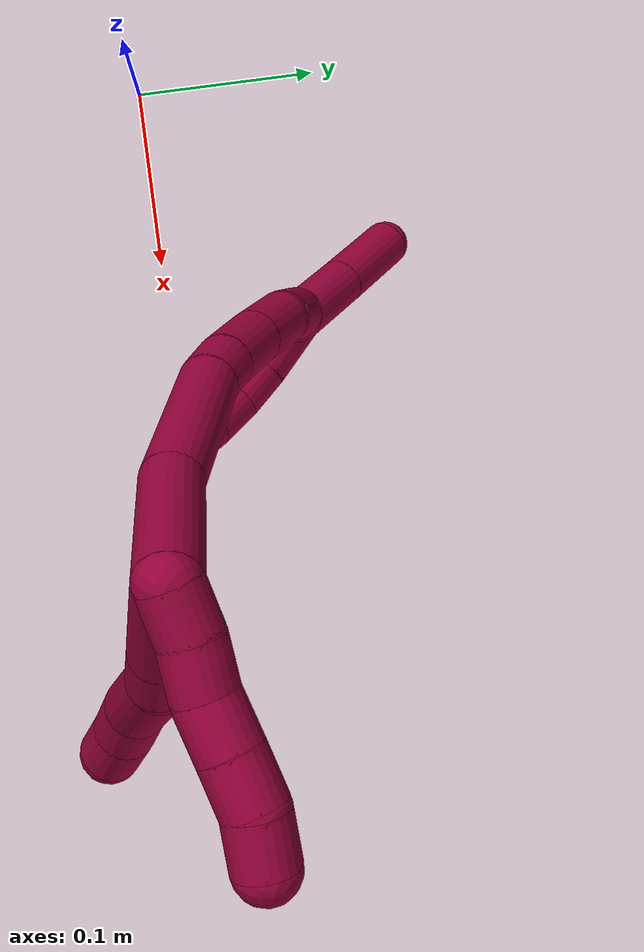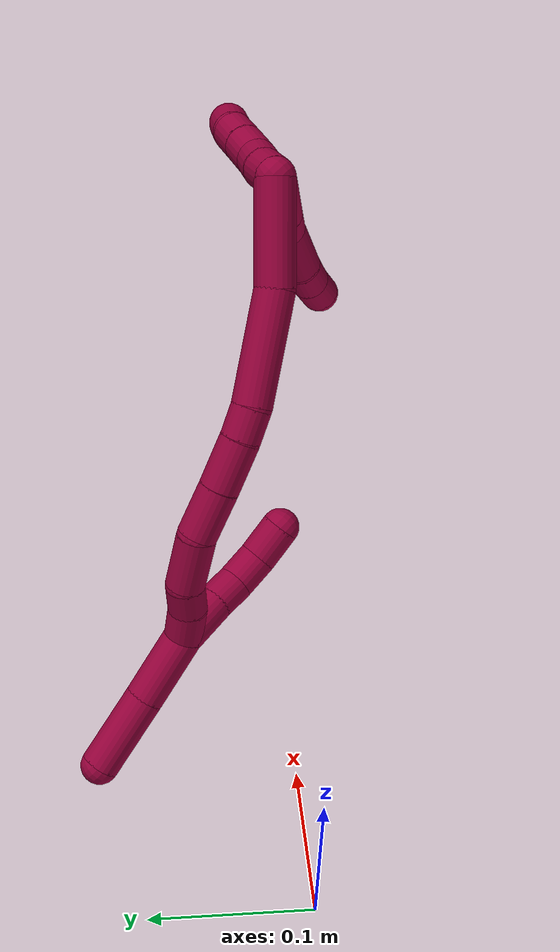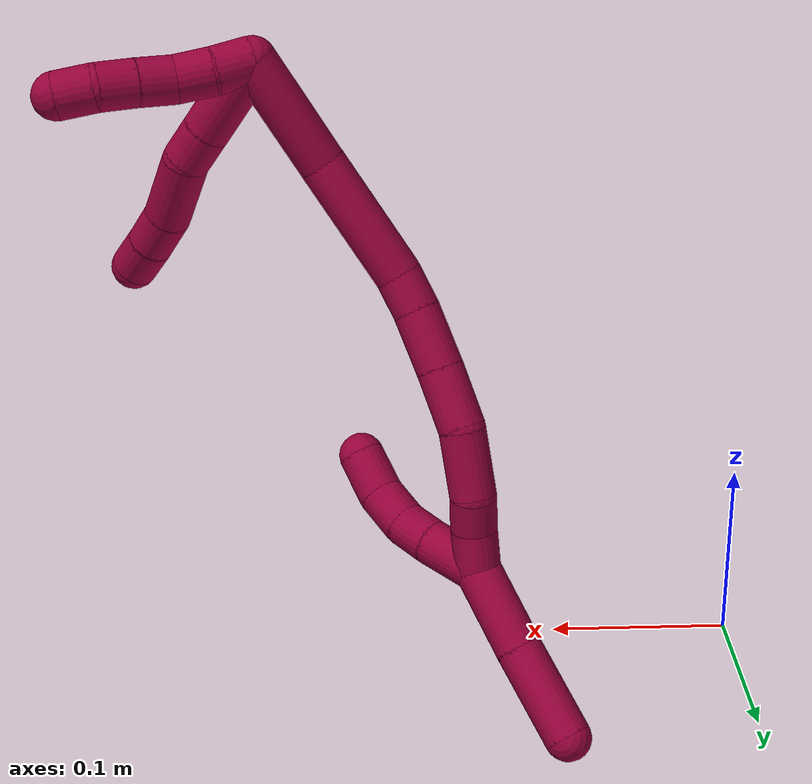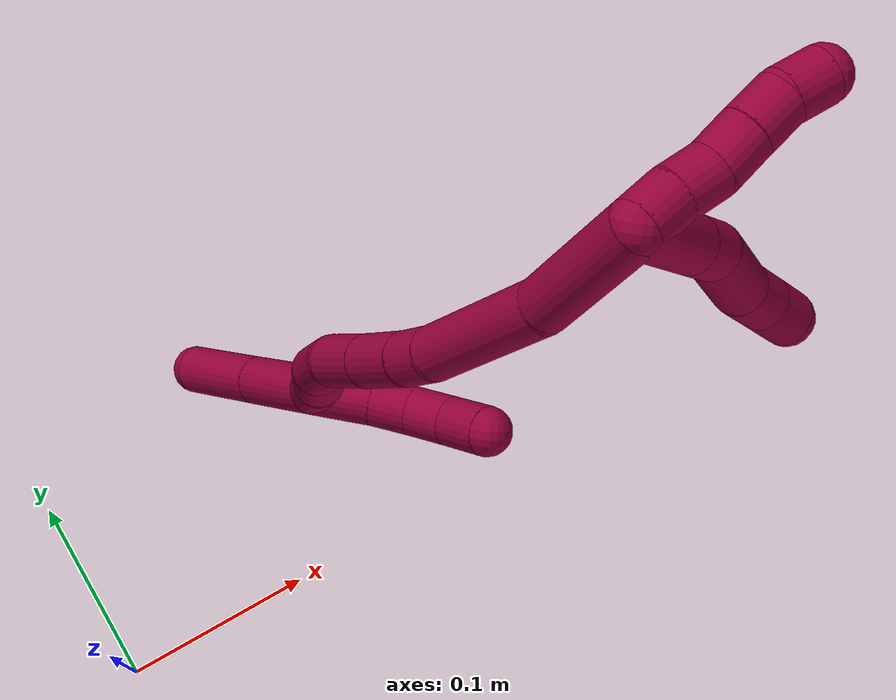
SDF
<sdf version="1.7">
 <world name="default">
  <model name="8">
   <static>0</static>
   <link name="8">
    <collision name="collision-cylinder-e_1_2_8">
     <pose>0.02195 0.005044 -0.006837 -2.50594 1.20147 -2.24638</pose>
     <geometry><cylinder><radius>0.0125</radius><length>0.047074</length></cylinder></geometry>
     <surface>
      <friction><ode><mu>1.16</mu><mu2>1.16</mu2><slip1>0</slip1><slip2>0</slip2></ode></friction>
      <contact><ode><kp>1e+06</kp><kd>1</kd><max_vel>0</max_vel><min_depth>0.001</min_depth></ode></contact>
     </surface>
    </collision>
    <visual name="visual-cylinder-e_1_2_8">
     <pose>0.02195 0.005044 -0.006837 -2.50594 1.20147 -2.24638</pose>
     <geometry><cylinder><radius>0.0125</radius><length>0.047074</length></cylinder></geometry>
     <material><ambient>0.584314 0 0.227451 1</ambient></material>
    </visual>
    <collision name="collision-cylinder-e_2_8_9">
     <pose>0.053598 0.012251 -0.016677 -2.51752 1.20628 -2.26559</pose>
     <geometry><cylinder><radius>0.0125</radius><length>0.02076</length></cylinder></geometry>
     <surface>
      <friction><ode><mu>1.16</mu><mu2>1.16</mu2><slip1>0</slip1><slip2>0</slip2></ode></friction>
      <contact><ode><kp>1e+06</kp><kd>1</kd><max_vel>0</max_vel><min_depth>0.001</min_depth></ode></contact>
     </surface>
    </collision>
    <visual name="visual-cylinder-e_2_8_9">
     <pose>0.053598 0.012251 -0.016677 -2.51752 1.20628 -2.26559</pose>
     <geometry><cylinder><radius>0.0125</radius><length>0.02076</length></cylinder></geometry>
     <material><ambient>0.584314 0 0.227451 1</ambient></material>
    </visual>
    <collision name="collision-cylinder-e_3_9_10">
     <pose>0.079101 0.018482 -0.030273 -2.77491 0.94812 -2.44802</pose>
     <geometry><cylinder><radius>0.0125</radius><length>0.038913</length></cylinder></geometry>
     <surface>
      <friction><ode><mu>1.16</mu><mu2>1.16</mu2><slip1>0</slip1><slip2>0</slip2></ode></friction>
      <contact><ode><kp>1e+06</kp><kd>1</kd><max_vel>0</max_vel><min_depth>0.001</min_depth></ode></contact>
     </surface>
    </collision>
    <visual name="visual-cylinder-e_3_9_10">
     <pose>0.079101 0.018482 -0.030273 -2.77491 0.94812 -2.44802</pose>
     <geometry><cylinder><radius>0.0125</radius><length>0.038913</length></cylinder></geometry>
     <material><ambient>0.584314 0 0.227451 1</ambient></material>
    </visual>
    <collision name="collision-cylinder-e_4_10_11">
     <pose>0.104733 0.0237 -0.045522 -2.89942 1.11672 -2.75682</pose>
     <geometry><cylinder><radius>0.0125</radius><length>0.02187</length></cylinder></geometry>
     <surface>
      <friction><ode><mu>1.16</mu><mu2>1.16</mu2><slip1>0</slip1><slip2>0</slip2></ode></friction>
      <contact><ode><kp>1e+06</kp><kd>1</kd><max_vel>0</max_vel><min_depth>0.001</min_depth></ode></contact>
     </surface>
    </collision>
    <visual name="visual-cylinder-e_4_10_11">
     <pose>0.104733 0.0237 -0.045522 -2.89942 1.11672 -2.75682</pose>
     <geometry><cylinder><radius>0.0125</radius><length>0.02187</length></cylinder></geometry>
     <material><ambient>0.584314 0 0.227451 1</ambient></material>
    </visual>
    <collision name="collision-cylinder-e_5_11_6">
     <pose>0.124126 0.025106 -0.054945 -3.08796 1.10796 -3.05492</pose>
     <geometry><cylinder><radius>0.0125</radius><length>0.021383</length></cylinder></geometry>
     <surface>
      <friction><ode><mu>1.16</mu><mu2>1.16</mu2><slip1>0</slip1><slip2>0</slip2></ode></friction>
      <contact><ode><kp>1e+06</kp><kd>1</kd><max_vel>0</max_vel><min_depth>0.001</min_depth></ode></contact>
     </surface>
    </collision>
    <visual name="visual-cylinder-e_5_11_6">
     <pose>0.124126 0.025106 -0.054945 -3.08796 1.10796 -3.05492</pose>
     <geometry><cylinder><radius>0.0125</radius><length>0.021383</length></cylinder></geometry>
     <material><ambient>0.584314 0 0.227451 1</ambient></material>
    </visual>
    <collision name="collision-cylinder-e_1_2_12">
     <pose>0.008491 5e-05 0.005282 -0.009557 1.01432 -0.005311</pose>
     <geometry><cylinder><radius>0.0125</radius><length>0.02</length></cylinder></geometry>
     <surface>
      <friction><ode><mu>1.16</mu><mu2>1.16</mu2><slip1>0</slip1><slip2>0</slip2></ode></friction>
      <contact><ode><kp>1e+06</kp><kd>1</kd><max_vel>0</max_vel><min_depth>0.001</min_depth></ode></contact>
     </surface>
    </collision>
    <visual name="visual-cylinder-e_1_2_12">
     <pose>0.008491 5e-05 0.005282 -0.009557 1.01432 -0.005311</pose>
     <geometry><cylinder><radius>0.0125</radius><length>0.02</length></cylinder></geometry>
     <material><ambient>0.584314 0 0.227451 1</ambient></material>
    </visual>
    <collision name="collision-cylinder-e_2_12_13">
     <pose>0.025764 -0.001032 0.01521 0.239215 1.07205 0.142543</pose>
     <geometry><cylinder><radius>0.0125</radius><length>0.02</length></cylinder></geometry>
     <surface>
      <friction><ode><mu>1.16</mu><mu2>1.16</mu2><slip1>0</slip1><slip2>0</slip2></ode></friction>
      <contact><ode><kp>1e+06</kp><kd>1</kd><max_vel>0</max_vel><min_depth>0.001</min_depth></ode></contact>
     </surface>
    </collision>
    <visual name="visual-cylinder-e_2_12_13">
     <pose>0.025764 -0.001032 0.01521 0.239215 1.07205 0.142543</pose>
     <geometry><cylinder><radius>0.0125</radius><length>0.02</length></cylinder></geometry>
     <material><ambient>0.584314 0 0.227451 1</ambient></material>
    </visual>
    <collision name="collision-cylinder-e_3_13_14">
     <pose>0.041803 -0.003015 0.026685 0.123727 0.812072 0.053249</pose>
     <geometry><cylinder><radius>0.0125</radius><length>0.02</length></cylinder></geometry>
     <surface>
      <friction><ode><mu>1.16</mu><mu2>1.16</mu2><slip1>0</slip1><slip2>0</slip2></ode></friction>
      <contact><ode><kp>1e+06</kp><kd>1</kd><max_vel>0</max_vel><min_depth>0.001</min_depth></ode></contact>
     </surface>
    </collision>
    <visual name="visual-cylinder-e_3_13_14">
     <pose>0.041803 -0.003015 0.026685 0.123727 0.812072 0.053249</pose>
     <geometry><cylinder><radius>0.0125</radius><length>0.02</length></cylinder></geometry>
     <material><ambient>0.584314 0 0.227451 1</ambient></material>
    </visual>
    <collision name="collision-cylinder-e_4_14_15">
     <pose>0.056604 -0.004605 0.040035 0.113156 0.854702 0.051577</pose>
     <geometry><cylinder><radius>0.0125</radius><length>0.02</length></cylinder></geometry>
     <surface>
      <friction><ode><mu>1.16</mu><mu2>1.16</mu2><slip1>0</slip1><slip2>0</slip2></ode></friction>
      <contact><ode><kp>1e+06</kp><kd>1</kd><max_vel>0</max_vel><min_depth>0.001</min_depth></ode></contact>
     </surface>
    </collision>
    <visual name="visual-cylinder-e_4_14_15">
     <pose>0.056604 -0.004605 0.040035 0.113156 0.854702 0.051577</pose>
     <geometry><cylinder><radius>0.0125</radius><length>0.02</length></cylinder></geometry>
     <material><ambient>0.584314 0 0.227451 1</ambient></material>
    </visual>
    <collision name="collision-cylinder-e_5_15_5">
     <pose>0.073071 -0.006874 0.050804 0.345238 1.1025 0.213579</pose>
     <geometry><cylinder><radius>0.0125</radius><length>0.02</length></cylinder></geometry>
     <surface>
      <friction><ode><mu>1.16</mu><mu2>1.16</mu2><slip1>0</slip1><slip2>0</slip2></ode></friction>
      <contact><ode><kp>1e+06</kp><kd>1</kd><max_vel>0</max_vel><min_depth>0.001</min_depth></ode></contact>
     </surface>
    </collision>
    <visual name="visual-cylinder-e_5_15_5">
     <pose>0.073071 -0.006874 0.050804 0.345238 1.1025 0.213579</pose>
     <geometry><cylinder><radius>0.0125</radius><length>0.02</length></cylinder></geometry>
     <material><ambient>0.584314 0 0.227451 1</ambient></material>
    </visual>
    <collision name="collision-cylinder-e_1_2_16">
     <pose>0.001559 0.022532 -0.022492 -2.35531 0.048916 -0.117832</pose>
     <geometry><cylinder><radius>0.0125</radius><length>0.06375</length></cylinder></geometry>
     <surface>
      <friction><ode><mu>1.16</mu><mu2>1.16</mu2><slip1>0</slip1><slip2>0</slip2></ode></friction>
      <contact><ode><kp>1e+06</kp><kd>1</kd><max_vel>0</max_vel><min_depth>0.001</min_depth></ode></contact>
     </surface>
    </collision>
    <visual name="visual-cylinder-e_1_2_16">
     <pose>0.001559 0.022532 -0.022492 -2.35531 0.048916 -0.117832</pose>
     <geometry><cylinder><radius>0.0125</radius><length>0.06375</length></cylinder></geometry>
     <material><ambient>0.584314 0 0.227451 1</ambient></material>
    </visual>
    <collision name="collision-cylinder-e_2_16_17">
     <pose>0.002332 0.074094 -0.064452 -2.16151 -0.022467 0.042112</pose>
     <geometry><cylinder><radius>0.0125</radius><length>0.069926</length></cylinder></geometry>
     <surface>
      <friction><ode><mu>1.16</mu><mu2>1.16</mu2><slip1>0</slip1><slip2>0</slip2></ode></friction>
      <contact><ode><kp>1e+06</kp><kd>1</kd><max_vel>0</max_vel><min_depth>0.001</min_depth></ode></contact>
     </surface>
    </collision>
    <visual name="visual-cylinder-e_2_16_17">
     <pose>0.002332 0.074094 -0.064452 -2.16151 -0.022467 0.042112</pose>
     <geometry><cylinder><radius>0.0125</radius><length>0.069926</length></cylinder></geometry>
     <material><ambient>0.584314 0 0.227451 1</ambient></material>
    </visual>
    <collision name="collision-cylinder-e_3_17_18">
     <pose>0.002246 0.112334 -0.088277 -2.01271 0.068544 -0.108195</pose>
     <geometry><cylinder><radius>0.0125</radius><length>0.020423</length></cylinder></geometry>
     <surface>
      <friction><ode><mu>1.16</mu><mu2>1.16</mu2><slip1>0</slip1><slip2>0</slip2></ode></friction>
      <contact><ode><kp>1e+06</kp><kd>1</kd><max_vel>0</max_vel><min_depth>0.001</min_depth></ode></contact>
     </surface>
    </collision>
    <visual name="visual-cylinder-e_3_17_18">
     <pose>0.002246 0.112334 -0.088277 -2.01271 0.068544 -0.108195</pose>
     <geometry><cylinder><radius>0.0125</radius><length>0.020423</length></cylinder></geometry>
     <material><ambient>0.584314 0 0.227451 1</ambient></material>
    </visual>
    <collision name="collision-cylinder-e_4_18_19">
     <pose>0.005084 0.136606 -0.098471 -1.94051 0.131664 -0.191916</pose>
     <geometry><cylinder><radius>0.0125</radius><length>0.032592</length></cylinder></geometry>
     <surface>
      <friction><ode><mu>1.16</mu><mu2>1.16</mu2><slip1>0</slip1><slip2>0</slip2></ode></friction>
      <contact><ode><kp>1e+06</kp><kd>1</kd><max_vel>0</max_vel><min_depth>0.001</min_depth></ode></contact>
     </surface>
    </collision>
    <visual name="visual-cylinder-e_4_18_19">
     <pose>0.005084 0.136606 -0.098471 -1.94051 0.131664 -0.191916</pose>
     <geometry><cylinder><radius>0.0125</radius><length>0.032592</length></cylinder></geometry>
     <material><ambient>0.584314 0 0.227451 1</ambient></material>
    </visual>
    <collision name="collision-cylinder-e_5_19_20">
     <pose>0.009807 0.167067 -0.109776 -1.91196 0.156821 -0.221636</pose>
     <geometry><cylinder><radius>0.0125</radius><length>0.033084</length></cylinder></geometry>
     <surface>
      <friction><ode><mu>1.16</mu><mu2>1.16</mu2><slip1>0</slip1><slip2>0</slip2></ode></friction>
      <contact><ode><kp>1e+06</kp><kd>1</kd><max_vel>0</max_vel><min_depth>0.001</min_depth></ode></contact>
     </surface>
    </collision>
    <visual name="visual-cylinder-e_5_19_20">
     <pose>0.009807 0.167067 -0.109776 -1.91196 0.156821 -0.221636</pose>
     <geometry><cylinder><radius>0.0125</radius><length>0.033084</length></cylinder></geometry>
     <material><ambient>0.584314 0 0.227451 1</ambient></material>
    </visual>
    <collision name="collision-cylinder-e_6_20_21">
     <pose>0.019669 0.197134 -0.1236 -2.08862 0.406986 -0.682306</pose>
     <geometry><cylinder><radius>0.0125</radius><length>0.036771</length></cylinder></geometry>
     <surface>
      <friction><ode><mu>1.16</mu><mu2>1.16</mu2><slip1>0</slip1><slip2>0</slip2></ode></friction>
      <contact><ode><kp>1e+06</kp><kd>1</kd><max_vel>0</max_vel><min_depth>0.001</min_depth></ode></contact>
     </surface>
    </collision>
    <visual name="visual-cylinder-e_6_20_21">
     <pose>0.019669 0.197134 -0.1236 -2.08862 0.406986 -0.682306</pose>
     <geometry><cylinder><radius>0.0125</radius><length>0.036771</length></cylinder></geometry>
     <material><ambient>0.584314 0 0.227451 1</ambient></material>
    </visual>
    <collision name="collision-cylinder-e_7_21_22">
     <pose>0.032462 0.217582 -0.138008 -2.37934 0.58283 -1.28513</pose>
     <geometry><cylinder><radius>0.0125</radius><length>0.020042</length></cylinder></geometry>
     <surface>
      <friction><ode><mu>1.16</mu><mu2>1.16</mu2><slip1>0</slip1><slip2>0</slip2></ode></friction>
      <contact><ode><kp>1e+06</kp><kd>1</kd><max_vel>0</max_vel><min_depth>0.001</min_depth></ode></contact>
     </surface>
    </collision>
    <visual name="visual-cylinder-e_7_21_22">
     <pose>0.032462 0.217582 -0.138008 -2.37934 0.58283 -1.28513</pose>
     <geometry><cylinder><radius>0.0125</radius><length>0.020042</length></cylinder></geometry>
     <material><ambient>0.584314 0 0.227451 1</ambient></material>
    </visual>
    <collision name="collision-cylinder-e_8_22_1">
     <pose>0.043475 0.231986 -0.149752 -2.15409 0.488872 -0.867927</pose>
     <geometry><cylinder><radius>0.0125</radius><length>0.023413</length></cylinder></geometry>
     <surface>
      <friction><ode><mu>1.16</mu><mu2>1.16</mu2><slip1>0</slip1><slip2>0</slip2></ode></friction>
      <contact><ode><kp>1e+06</kp><kd>1</kd><max_vel>0</max_vel><min_depth>0.001</min_depth></ode></contact>
     </surface>
    </collision>
    <visual name="visual-cylinder-e_8_22_1">
     <pose>0.043475 0.231986 -0.149752 -2.15409 0.488872 -0.867927</pose>
     <geometry><cylinder><radius>0.0125</radius><length>0.023413</length></cylinder></geometry>
     <material><ambient>0.584314 0 0.227451 1</ambient></material>
    </visual>
    <collision name="collision-cylinder-e_1_1_23">
     <pose>0.058418 0.227702 -0.155321 1.56126 0.631626 0.626017</pose>
     <geometry><cylinder><radius>0.0125</radius><length>0.031995</length></cylinder></geometry>
     <surface>
      <friction><ode><mu>1.16</mu><mu2>1.16</mu2><slip1>0</slip1><slip2>0</slip2></ode></friction>
      <contact><ode><kp>1e+06</kp><kd>1</kd><max_vel>0</max_vel><min_depth>0.001</min_depth></ode></contact>
     </surface>
    </collision>
    <visual name="visual-cylinder-e_1_1_23">
     <pose>0.058418 0.227702 -0.155321 1.56126 0.631626 0.626017</pose>
     <geometry><cylinder><radius>0.0125</radius><length>0.031995</length></cylinder></geometry>
     <material><ambient>0.584314 0 0.227451 1</ambient></material>
    </visual>
    <collision name="collision-cylinder-e_2_23_24">
     <pose>0.073395 0.206113 -0.155585 1.61533 0.566962 0.591341</pose>
     <geometry><cylinder><radius>0.0125</radius><length>0.020596</length></cylinder></geometry>
     <surface>
      <friction><ode><mu>1.16</mu><mu2>1.16</mu2><slip1>0</slip1><slip2>0</slip2></ode></friction>
      <contact><ode><kp>1e+06</kp><kd>1</kd><max_vel>0</max_vel><min_depth>0.001</min_depth></ode></contact>
     </surface>
    </collision>
    <visual name="visual-cylinder-e_2_23_24">
     <pose>0.073395 0.206113 -0.155585 1.61533 0.566962 0.591341</pose>
     <geometry><cylinder><radius>0.0125</radius><length>0.020596</length></cylinder></geometry>
     <material><ambient>0.584314 0 0.227451 1</ambient></material>
    </visual>
    <collision name="collision-cylinder-e_3_24_25">
     <pose>0.08225 0.186868 -0.155419 1.51857 0.304336 0.289063</pose>
     <geometry><cylinder><radius>0.0125</radius><length>0.022183</length></cylinder></geometry>
     <surface>
      <friction><ode><mu>1.16</mu><mu2>1.16</mu2><slip1>0</slip1><slip2>0</slip2></ode></friction>
      <contact><ode><kp>1e+06</kp><kd>1</kd><max_vel>0</max_vel><min_depth>0.001</min_depth></ode></contact>
     </surface>
    </collision>
    <visual name="visual-cylinder-e_3_24_25">
     <pose>0.08225 0.186868 -0.155419 1.51857 0.304336 0.289063</pose>
     <geometry><cylinder><radius>0.0125</radius><length>0.022183</length></cylinder></geometry>
     <material><ambient>0.584314 0 0.227451 1</ambient></material>
    </visual>
    <collision name="collision-cylinder-e_4_25_4">
     <pose>0.086151 0.16383 -0.153063 1.42715 0.045784 0.03964</pose>
     <geometry><cylinder><radius>0.0125</radius><length>0.025226</length></cylinder></geometry>
     <surface>
      <friction><ode><mu>1.16</mu><mu2>1.16</mu2><slip1>0</slip1><slip2>0</slip2></ode></friction>
      <contact><ode><kp>1e+06</kp><kd>1</kd><max_vel>0</max_vel><min_depth>0.001</min_depth></ode></contact>
     </surface>
    </collision>
    <visual name="visual-cylinder-e_4_25_4">
     <pose>0.086151 0.16383 -0.153063 1.42715 0.045784 0.03964</pose>
     <geometry><cylinder><radius>0.0125</radius><length>0.025226</length></cylinder></geometry>
     <material><ambient>0.584314 0 0.227451 1</ambient></material>
    </visual>
    <collision name="collision-cylinder-e_1_1_26">
     <pose>0.048423 0.263616 -0.160632 -1.79259 -0.023291 0.029127</pose>
     <geometry><cylinder><radius>0.0125</radius><length>0.047176</length></cylinder></geometry>
     <surface>
      <friction><ode><mu>1.16</mu><mu2>1.16</mu2><slip1>0</slip1><slip2>0</slip2></ode></friction>
      <contact><ode><kp>1e+06</kp><kd>1</kd><max_vel>0</max_vel><min_depth>0.001</min_depth></ode></contact>
     </surface>
    </collision>
    <visual name="visual-cylinder-e_1_1_26">
     <pose>0.048423 0.263616 -0.160632 -1.79259 -0.023291 0.029127</pose>
     <geometry><cylinder><radius>0.0125</radius><length>0.047176</length></cylinder></geometry>
     <material><ambient>0.584314 0 0.227451 1</ambient></material>
    </visual>
    <collision name="collision-cylinder-e_2_26_3">
     <pose>0.046403 0.312427 -0.171248 -1.77812 -0.055719 0.068649</pose>
     <geometry><cylinder><radius>0.0125</radius><length>0.052824</length></cylinder></geometry>
     <surface>
      <friction><ode><mu>1.16</mu><mu2>1.16</mu2><slip1>0</slip1><slip2>0</slip2></ode></friction>
      <contact><ode><kp>1e+06</kp><kd>1</kd><max_vel>0</max_vel><min_depth>0.001</min_depth></ode></contact>
     </surface>
    </collision>
    <visual name="visual-cylinder-e_2_26_3">
     <pose>0.046403 0.312427 -0.171248 -1.77812 -0.055719 0.068649</pose>
     <geometry><cylinder><radius>0.0125</radius><length>0.052824</length></cylinder></geometry>
     <material><ambient>0.584314 0 0.227451 1</ambient></material>
    </visual>
    <collision name="collision-sphere-3">
     <pose>0.044932 0.338233 -0.176676 0 -0 0</pose>
     <geometry><sphere><radius>0.0125</radius></sphere></geometry>
     <surface>
      <friction><ode><mu>1.16</mu><mu2>1.16</mu2><slip1>0</slip1><slip2>0</slip2></ode></friction>
      <contact><ode><kp>1e+06</kp><kd>1</kd><max_vel>0</max_vel><min_depth>0.001</min_depth></ode></contact>
     </surface>
    </collision>
    <visual name="visual-sphere-3">
     <pose>0.044932 0.338233 -0.176676 0 -0 0</pose>
     <geometry><sphere><radius>0.0125</radius></sphere></geometry>
     <material><ambient>0.584314 0 0.227451 1</ambient></material>
    </visual>
    <collision name="collision-sphere-26">
     <pose>0.047874 0.28662 -0.16582 0 -0 0</pose>
     <geometry><sphere><radius>0.0125</radius></sphere></geometry>
     <surface>
      <friction><ode><mu>1.16</mu><mu2>1.16</mu2><slip1>0</slip1><slip2>0</slip2></ode></friction>
      <contact><ode><kp>1e+06</kp><kd>1</kd><max_vel>0</max_vel><min_depth>0.001</min_depth></ode></contact>
     </surface>
    </collision>
    <visual name="visual-sphere-26">
     <pose>0.047874 0.28662 -0.16582 0 -0 0</pose>
     <geometry><sphere><radius>0.0125</radius></sphere></geometry>
     <material><ambient>0.584314 0 0.227451 1</ambient></material>
    </visual>
    <collision name="collision-sphere-4">
     <pose>0.086728 0.15136 -0.15126 0 -0 0</pose>
     <geometry><sphere><radius>0.0125</radius></sphere></geometry>
     <surface>
      <friction><ode><mu>1.16</mu><mu2>1.16</mu2><slip1>0</slip1><slip2>0</slip2></ode></friction>
      <contact><ode><kp>1e+06</kp><kd>1</kd><max_vel>0</max_vel><min_depth>0.001</min_depth></ode></contact>
     </surface>
    </collision>
    <visual name="visual-sphere-4">
     <pose>0.086728 0.15136 -0.15126 0 -0 0</pose>
     <geometry><sphere><radius>0.0125</radius></sphere></geometry>
     <material><ambient>0.584314 0 0.227451 1</ambient></material>
    </visual>
    <collision name="collision-sphere-25">
     <pose>0.085573 0.1763 -0.154867 0 -0 0</pose>
     <geometry><sphere><radius>0.0125</radius></sphere></geometry>
     <surface>
      <friction><ode><mu>1.16</mu><mu2>1.16</mu2><slip1>0</slip1><slip2>0</slip2></ode></friction>
      <contact><ode><kp>1e+06</kp><kd>1</kd><max_vel>0</max_vel><min_depth>0.001</min_depth></ode></contact>
     </surface>
    </collision>
    <visual name="visual-sphere-25">
     <pose>0.085573 0.1763 -0.154867 0 -0 0</pose>
     <geometry><sphere><radius>0.0125</radius></sphere></geometry>
     <material><ambient>0.584314 0 0.227451 1</ambient></material>
    </visual>
    <collision name="collision-sphere-24">
     <pose>0.078926 0.197435 -0.155972 0 -0 0</pose>
     <geometry><sphere><radius>0.0125</radius></sphere></geometry>
     <surface>
      <friction><ode><mu>1.16</mu><mu2>1.16</mu2><slip1>0</slip1><slip2>0</slip2></ode></friction>
      <contact><ode><kp>1e+06</kp><kd>1</kd><max_vel>0</max_vel><min_depth>0.001</min_depth></ode></contact>
     </surface>
    </collision>
    <visual name="visual-sphere-24">
     <pose>0.078926 0.197435 -0.155972 0 -0 0</pose>
     <geometry><sphere><radius>0.0125</radius></sphere></geometry>
     <material><ambient>0.584314 0 0.227451 1</ambient></material>
    </visual>
    <collision name="collision-sphere-23">
     <pose>0.067864 0.214792 -0.155198 0 -0 0</pose>
     <geometry><sphere><radius>0.0125</radius></sphere></geometry>
     <surface>
      <friction><ode><mu>1.16</mu><mu2>1.16</mu2><slip1>0</slip1><slip2>0</slip2></ode></friction>
      <contact><ode><kp>1e+06</kp><kd>1</kd><max_vel>0</max_vel><min_depth>0.001</min_depth></ode></contact>
     </surface>
    </collision>
    <visual name="visual-sphere-23">
     <pose>0.067864 0.214792 -0.155198 0 -0 0</pose>
     <geometry><sphere><radius>0.0125</radius></sphere></geometry>
     <material><ambient>0.584314 0 0.227451 1</ambient></material>
    </visual>
    <collision name="collision-sphere-1">
     <pose>0.048973 0.240612 -0.155445 0 -0 0</pose>
     <geometry><sphere><radius>0.0125</radius></sphere></geometry>
     <surface>
      <friction><ode><mu>1.16</mu><mu2>1.16</mu2><slip1>0</slip1><slip2>0</slip2></ode></friction>
      <contact><ode><kp>1e+06</kp><kd>1</kd><max_vel>0</max_vel><min_depth>0.001</min_depth></ode></contact>
     </surface>
    </collision>
    <visual name="visual-sphere-1">
     <pose>0.048973 0.240612 -0.155445 0 -0 0</pose>
     <geometry><sphere><radius>0.0125</radius></sphere></geometry>
     <material><ambient>0.584314 0 0.227451 1</ambient></material>
    </visual>
    <collision name="collision-sphere-22">
     <pose>0.037977 0.22336 -0.14406 0 -0 0</pose>
     <geometry><sphere><radius>0.0125</radius></sphere></geometry>
     <surface>
      <friction><ode><mu>1.16</mu><mu2>1.16</mu2><slip1>0</slip1><slip2>0</slip2></ode></friction>
      <contact><ode><kp>1e+06</kp><kd>1</kd><max_vel>0</max_vel><min_depth>0.001</min_depth></ode></contact>
     </surface>
    </collision>
    <visual name="visual-sphere-22">
     <pose>0.037977 0.22336 -0.14406 0 -0 0</pose>
     <geometry><sphere><radius>0.0125</radius></sphere></geometry>
     <material><ambient>0.584314 0 0.227451 1</ambient></material>
    </visual>
    <collision name="collision-sphere-21">
     <pose>0.026946 0.211804 -0.131957 0 -0 0</pose>
     <geometry><sphere><radius>0.0125</radius></sphere></geometry>
     <surface>
      <friction><ode><mu>1.16</mu><mu2>1.16</mu2><slip1>0</slip1><slip2>0</slip2></ode></friction>
      <contact><ode><kp>1e+06</kp><kd>1</kd><max_vel>0</max_vel><min_depth>0.001</min_depth></ode></contact>
     </surface>
    </collision>
    <visual name="visual-sphere-21">
     <pose>0.026946 0.211804 -0.131957 0 -0 0</pose>
     <geometry><sphere><radius>0.0125</radius></sphere></geometry>
     <material><ambient>0.584314 0 0.227451 1</ambient></material>
    </visual>
    <collision name="collision-sphere-6">
     <pose>0.133693 0.025362 -0.059712 0 -0 0</pose>
     <geometry><sphere><radius>0.0125</radius></sphere></geometry>
     <surface>
      <friction><ode><mu>1.16</mu><mu2>1.16</mu2><slip1>0</slip1><slip2>0</slip2></ode></friction>
      <contact><ode><kp>1e+06</kp><kd>1</kd><max_vel>0</max_vel><min_depth>0.001</min_depth></ode></contact>
     </surface>
    </collision>
    <visual name="visual-sphere-6">
     <pose>0.133693 0.025362 -0.059712 0 -0 0</pose>
     <geometry><sphere><radius>0.0125</radius></sphere></geometry>
     <material><ambient>0.584314 0 0.227451 1</ambient></material>
    </visual>
    <collision name="collision-sphere-11">
     <pose>0.11456 0.02485 -0.050179 0 -0 0</pose>
     <geometry><sphere><radius>0.0125</radius></sphere></geometry>
     <surface>
      <friction><ode><mu>1.16</mu><mu2>1.16</mu2><slip1>0</slip1><slip2>0</slip2></ode></friction>
      <contact><ode><kp>1e+06</kp><kd>1</kd><max_vel>0</max_vel><min_depth>0.001</min_depth></ode></contact>
     </surface>
    </collision>
    <visual name="visual-sphere-11">
     <pose>0.11456 0.02485 -0.050179 0 -0 0</pose>
     <geometry><sphere><radius>0.0125</radius></sphere></geometry>
     <material><ambient>0.584314 0 0.227451 1</ambient></material>
    </visual>
    <collision name="collision-sphere-10">
     <pose>0.094906 0.02255 -0.040866 0 -0 0</pose>
     <geometry><sphere><radius>0.0125</radius></sphere></geometry>
     <surface>
      <friction><ode><mu>1.16</mu><mu2>1.16</mu2><slip1>0</slip1><slip2>0</slip2></ode></friction>
      <contact><ode><kp>1e+06</kp><kd>1</kd><max_vel>0</max_vel><min_depth>0.001</min_depth></ode></contact>
     </surface>
    </collision>
    <visual name="visual-sphere-10">
     <pose>0.094906 0.02255 -0.040866 0 -0 0</pose>
     <geometry><sphere><radius>0.0125</radius></sphere></geometry>
     <material><ambient>0.584314 0 0.227451 1</ambient></material>
    </visual>
    <collision name="collision-sphere-9">
     <pose>0.063296 0.014414 -0.01968 0 -0 0</pose>
     <geometry><sphere><radius>0.0125</radius></sphere></geometry>
     <surface>
      <friction><ode><mu>1.16</mu><mu2>1.16</mu2><slip1>0</slip1><slip2>0</slip2></ode></friction>
      <contact><ode><kp>1e+06</kp><kd>1</kd><max_vel>0</max_vel><min_depth>0.001</min_depth></ode></contact>
     </surface>
    </collision>
    <visual name="visual-sphere-9">
     <pose>0.063296 0.014414 -0.01968 0 -0 0</pose>
     <geometry><sphere><radius>0.0125</radius></sphere></geometry>
     <material><ambient>0.584314 0 0.227451 1</ambient></material>
    </visual>
    <collision name="collision-sphere-2">
     <geometry><sphere><radius>0.0125</radius></sphere></geometry>
     <surface>
      <friction><ode><mu>1.16</mu><mu2>1.16</mu2><slip1>0</slip1><slip2>0</slip2></ode></friction>
      <contact><ode><kp>1e+06</kp><kd>1</kd><max_vel>0</max_vel><min_depth>0.001</min_depth></ode></contact>
     </surface>
    </collision>
    <visual name="visual-sphere-2">
     <geometry><sphere><radius>0.0125</radius></sphere></geometry>
     <material><ambient>0.584314 0 0.227451 1</ambient></material>
    </visual>
    <collision name="collision-sphere-19">
     <pose>0.007224 0.15167 -0.104309 0 -0 0</pose>
     <geometry><sphere><radius>0.0125</radius></sphere></geometry>
     <surface>
      <friction><ode><mu>1.16</mu><mu2>1.16</mu2><slip1>0</slip1><slip2>0</slip2></ode></friction>
      <contact><ode><kp>1e+06</kp><kd>1</kd><max_vel>0</max_vel><min_depth>0.001</min_depth></ode></contact>
     </surface>
    </collision>
    <visual name="visual-sphere-19">
     <pose>0.007224 0.15167 -0.104309 0 -0 0</pose>
     <geometry><sphere><radius>0.0125</radius></sphere></geometry>
     <material><ambient>0.584314 0 0.227451 1</ambient></material>
    </visual>
    <collision name="collision-sphere-8">
     <pose>0.0439 0.010089 -0.013674 0 -0 0</pose>
     <geometry><sphere><radius>0.0125</radius></sphere></geometry>
     <surface>
      <friction><ode><mu>1.16</mu><mu2>1.16</mu2><slip1>0</slip1><slip2>0</slip2></ode></friction>
      <contact><ode><kp>1e+06</kp><kd>1</kd><max_vel>0</max_vel><min_depth>0.001</min_depth></ode></contact>
     </surface>
    </collision>
    <visual name="visual-sphere-8">
     <pose>0.0439 0.010089 -0.013674 0 -0 0</pose>
     <geometry><sphere><radius>0.0125</radius></sphere></geometry>
     <material><ambient>0.584314 0 0.227451 1</ambient></material>
    </visual>
    <collision name="collision-sphere-12">
     <pose>0.016982 0.000101 0.010563 0 -0 0</pose>
     <geometry><sphere><radius>0.0125</radius></sphere></geometry>
     <surface>
      <friction><ode><mu>1.16</mu><mu2>1.16</mu2><slip1>0</slip1><slip2>0</slip2></ode></friction>
      <contact><ode><kp>1e+06</kp><kd>1</kd><max_vel>0</max_vel><min_depth>0.001</min_depth></ode></contact>
     </surface>
    </collision>
    <visual name="visual-sphere-12">
     <pose>0.016982 0.000101 0.010563 0 -0 0</pose>
     <geometry><sphere><radius>0.0125</radius></sphere></geometry>
     <material><ambient>0.584314 0 0.227451 1</ambient></material>
    </visual>
    <collision name="collision-sphere-13">
     <pose>0.034546 -0.002166 0.019857 0 -0 0</pose>
     <geometry><sphere><radius>0.0125</radius></sphere></geometry>
     <surface>
      <friction><ode><mu>1.16</mu><mu2>1.16</mu2><slip1>0</slip1><slip2>0</slip2></ode></friction>
      <contact><ode><kp>1e+06</kp><kd>1</kd><max_vel>0</max_vel><min_depth>0.001</min_depth></ode></contact>
     </surface>
    </collision>
    <visual name="visual-sphere-13">
     <pose>0.034546 -0.002166 0.019857 0 -0 0</pose>
     <geometry><sphere><radius>0.0125</radius></sphere></geometry>
     <material><ambient>0.584314 0 0.227451 1</ambient></material>
    </visual>
    <collision name="collision-sphere-14">
     <pose>0.04906 -0.003864 0.033512 0 -0 0</pose>
     <geometry><sphere><radius>0.0125</radius></sphere></geometry>
     <surface>
      <friction><ode><mu>1.16</mu><mu2>1.16</mu2><slip1>0</slip1><slip2>0</slip2></ode></friction>
      <contact><ode><kp>1e+06</kp><kd>1</kd><max_vel>0</max_vel><min_depth>0.001</min_depth></ode></contact>
     </surface>
    </collision>
    <visual name="visual-sphere-14">
     <pose>0.04906 -0.003864 0.033512 0 -0 0</pose>
     <geometry><sphere><radius>0.0125</radius></sphere></geometry>
     <material><ambient>0.584314 0 0.227451 1</ambient></material>
    </visual>
    <collision name="collision-sphere-15">
     <pose>0.064148 -0.005346 0.046557 0 -0 0</pose>
     <geometry><sphere><radius>0.0125</radius></sphere></geometry>
     <surface>
      <friction><ode><mu>1.16</mu><mu2>1.16</mu2><slip1>0</slip1><slip2>0</slip2></ode></friction>
      <contact><ode><kp>1e+06</kp><kd>1</kd><max_vel>0</max_vel><min_depth>0.001</min_depth></ode></contact>
     </surface>
    </collision>
    <visual name="visual-sphere-15">
     <pose>0.064148 -0.005346 0.046557 0 -0 0</pose>
     <geometry><sphere><radius>0.0125</radius></sphere></geometry>
     <material><ambient>0.584314 0 0.227451 1</ambient></material>
    </visual>
    <collision name="collision-sphere-5">
     <pose>0.081995 -0.008401 0.055052 0 -0 0</pose>
     <geometry><sphere><radius>0.0125</radius></sphere></geometry>
     <surface>
      <friction><ode><mu>1.16</mu><mu2>1.16</mu2><slip1>0</slip1><slip2>0</slip2></ode></friction>
      <contact><ode><kp>1e+06</kp><kd>1</kd><max_vel>0</max_vel><min_depth>0.001</min_depth></ode></contact>
     </surface>
    </collision>
    <visual name="visual-sphere-5">
     <pose>0.081995 -0.008401 0.055052 0 -0 0</pose>
     <geometry><sphere><radius>0.0125</radius></sphere></geometry>
     <material><ambient>0.584314 0 0.227451 1</ambient></material>
    </visual>
    <collision name="collision-sphere-16">
     <pose>0.003117 0.045064 -0.044984 0 -0 0</pose>
     <geometry><sphere><radius>0.0125</radius></sphere></geometry>
     <surface>
      <friction><ode><mu>1.16</mu><mu2>1.16</mu2><slip1>0</slip1><slip2>0</slip2></ode></friction>
      <contact><ode><kp>1e+06</kp><kd>1</kd><max_vel>0</max_vel><min_depth>0.001</min_depth></ode></contact>
     </surface>
    </collision>
    <visual name="visual-sphere-16">
     <pose>0.003117 0.045064 -0.044984 0 -0 0</pose>
     <geometry><sphere><radius>0.0125</radius></sphere></geometry>
     <material><ambient>0.584314 0 0.227451 1</ambient></material>
    </visual>
    <collision name="collision-sphere-17">
     <pose>0.001546 0.103125 -0.08392 0 -0 0</pose>
     <geometry><sphere><radius>0.0125</radius></sphere></geometry>
     <surface>
      <friction><ode><mu>1.16</mu><mu2>1.16</mu2><slip1>0</slip1><slip2>0</slip2></ode></friction>
      <contact><ode><kp>1e+06</kp><kd>1</kd><max_vel>0</max_vel><min_depth>0.001</min_depth></ode></contact>
     </surface>
    </collision>
    <visual name="visual-sphere-17">
     <pose>0.001546 0.103125 -0.08392 0 -0 0</pose>
     <geometry><sphere><radius>0.0125</radius></sphere></geometry>
     <material><ambient>0.584314 0 0.227451 1</ambient></material>
    </visual>
    <collision name="collision-sphere-18">
     <pose>0.002945 0.121543 -0.092634 0 -0 0</pose>
     <geometry><sphere><radius>0.0125</radius></sphere></geometry>
     <surface>
      <friction><ode><mu>1.16</mu><mu2>1.16</mu2><slip1>0</slip1><slip2>0</slip2></ode></friction>
      <contact><ode><kp>1e+06</kp><kd>1</kd><max_vel>0</max_vel><min_depth>0.001</min_depth></ode></contact>
     </surface>
    </collision>
    <visual name="visual-sphere-18">
     <pose>0.002945 0.121543 -0.092634 0 -0 0</pose>
     <geometry><sphere><radius>0.0125</radius></sphere></geometry>
     <material><ambient>0.584314 0 0.227451 1</ambient></material>
    </visual>
    <collision name="collision-sphere-20">
     <pose>0.012391 0.182464 -0.115242 0 -0 0</pose>
     <geometry><sphere><radius>0.0125</radius></sphere></geometry>
     <surface>
      <friction><ode><mu>1.16</mu><mu2>1.16</mu2><slip1>0</slip1><slip2>0</slip2></ode></friction>
      <contact><ode><kp>1e+06</kp><kd>1</kd><max_vel>0</max_vel><min_depth>0.001</min_depth></ode></contact>
     </surface>
    </collision>
    <visual name="visual-sphere-20">
     <pose>0.012391 0.182464 -0.115242 0 -0 0</pose>
     <geometry><sphere><radius>0.0125</radius></sphere></geometry>
     <material><ambient>0.584314 0 0.227451 1</ambient></material>
    </visual>
    <inertial>
     <pose>0.03945 0.115516 -0.078353 0 -0 0</pose>
     <mass>0.75</mass>
     <inertia>
      <ixx>0.000113</ixx>
      <ixy>0</ixy>
      <ixz>0</ixz>
      <iyy>-3e-06</iyy>
      <iyz>0</iyz>
      <izz>-0.000126</izz>
     </inertia>
    </inertial>
   </link>
   <pose>0.263128 0.007425 0.341921 -0.852055 0.608428 -0.177581</pose>
  </model>
 </world>
</sdf>
